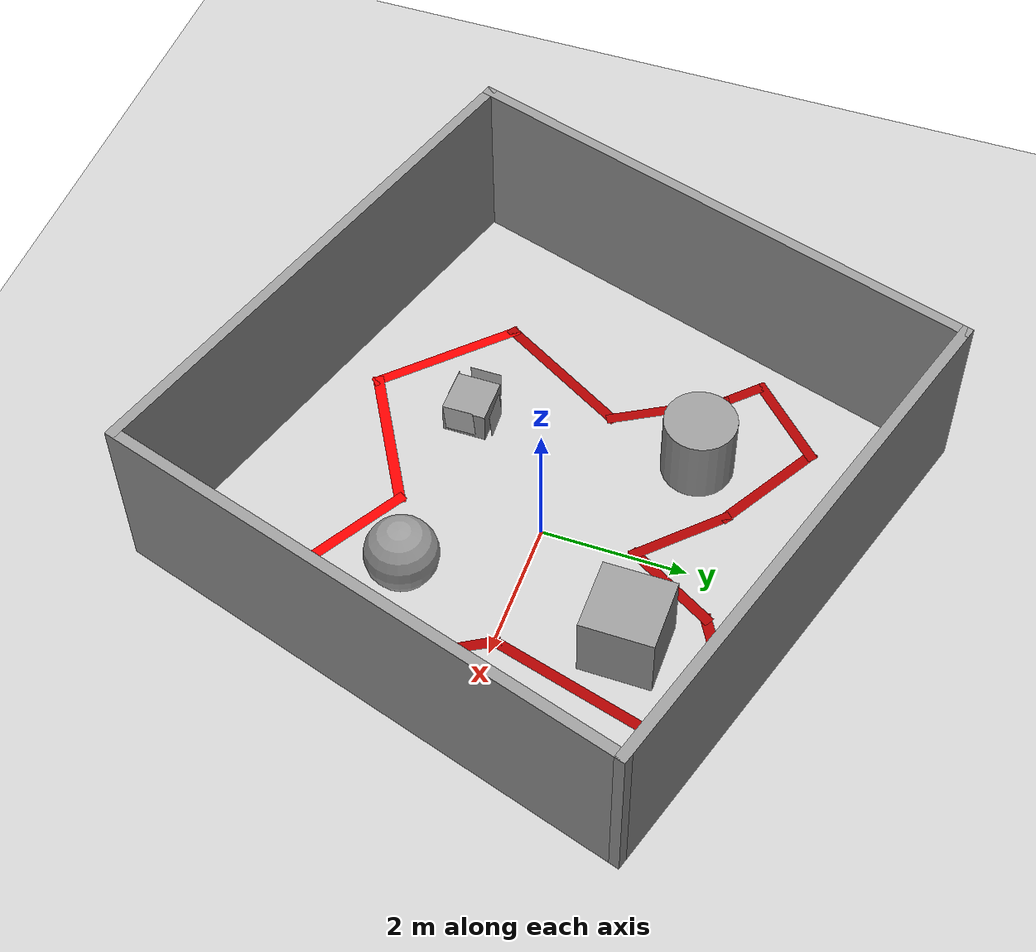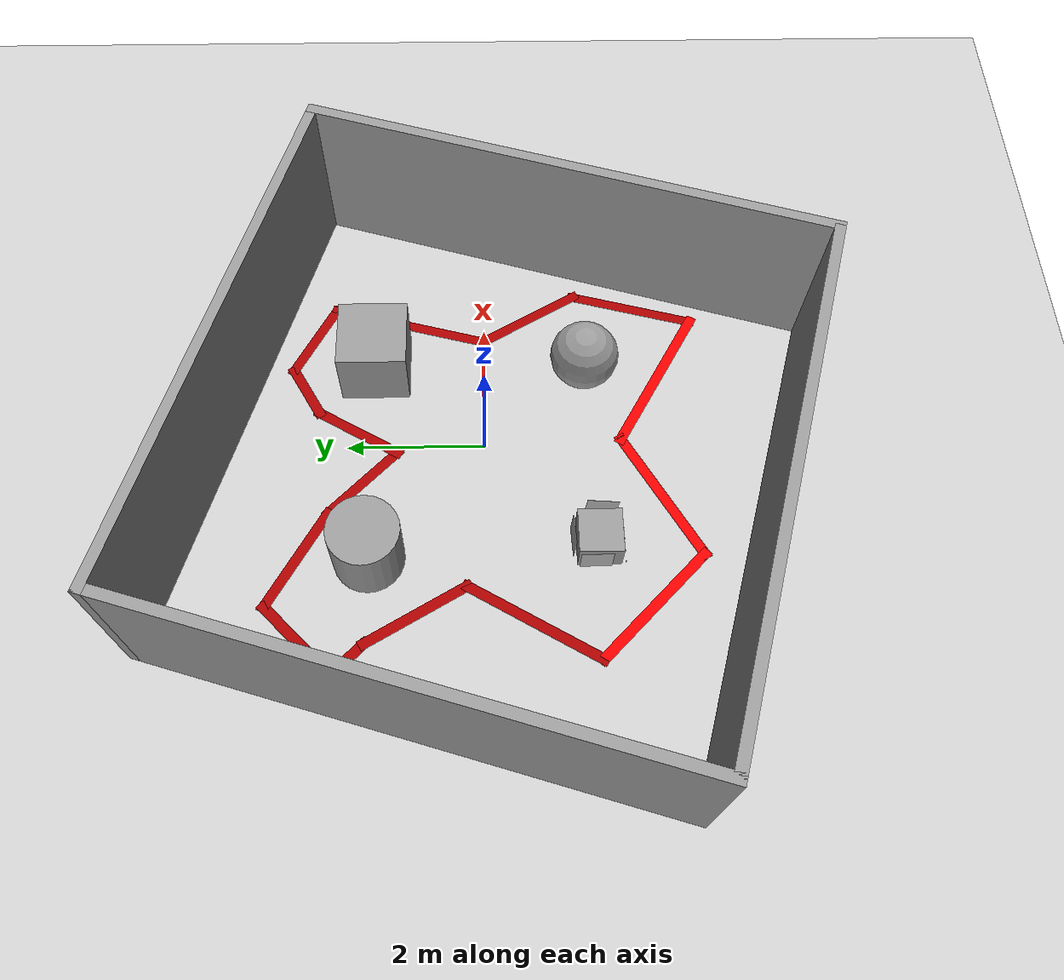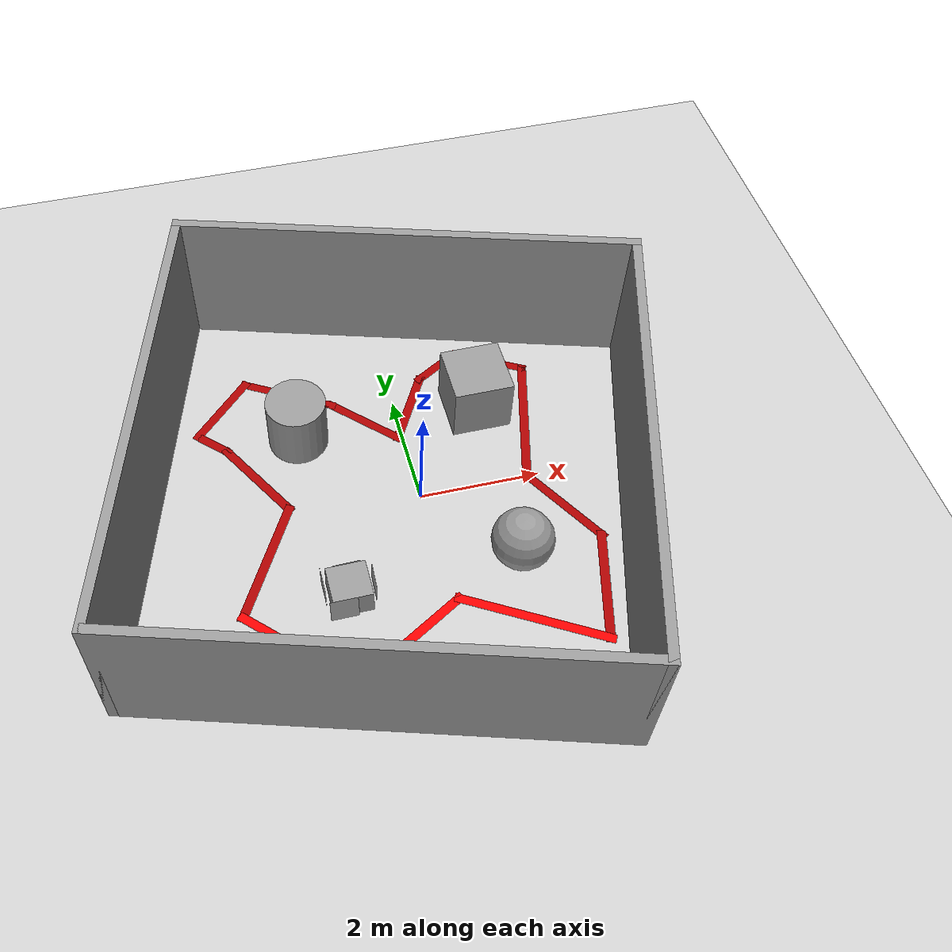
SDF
<sdf version="1.7">
 <world name="default">
  <light name="sun" type="directional">
   <pose>0 0 10 0 -0 0</pose>
   <diffuse>0.8 0.8 0.8 1</diffuse>
   <specular>0.2 0.2 0.2 1</specular>
   <attenuation>
    <range>1000</range>
    <constant>0.9</constant>
    <linear>0.01</linear>
    <quadratic>0.001</quadratic>
   </attenuation>
   <direction>-0.5 0.1 -0.9</direction>
   <spot><inner_angle>0</inner_angle><outer_angle>0</outer_angle><falloff>0</falloff></spot>
  </light>
  <model name="ground_plane">
   <static>1</static>
   <link name="link">
    <collision name="collision">
     <geometry><plane><normal>0 0 1</normal><size>100 100</size></plane></geometry>
     <surface>
      <contact><collide_bitmask>65535</collide_bitmask></contact>
      <friction><ode><mu>100</mu><mu2>50</mu2></ode></friction>
     </surface>
    </collision>
    <visual name="visual">
     <cast_shadows>0</cast_shadows>
     <geometry><plane><normal>0 0 1</normal><size>100 100</size></plane></geometry>
     <material>
      <script><uri>file://media/materials/scripts/gazebo.material</uri><name>Gazebo/Grey</name></script>
     </material>
    </visual>
   </link>
  </model>
  <gravity>0 0 -9.8</gravity>
  <magnetic_field>6e-06 2.3e-05 -4.2e-05</magnetic_field>
  <atmosphere type="adiabatic"/>
  <physics type="ode">
   <max_step_size>0.001</max_step_size>
   <real_time_factor>1</real_time_factor>
   <real_time_update_rate>1000</real_time_update_rate>
  </physics>
  <scene><ambient>0.4 0.4 0.4 1</ambient><background>0.7 0.7 0.7 1</background><shadows>1</shadows></scene>
  <spherical_coordinates>
   <surface_model>EARTH_WGS84</surface_model>
   <latitude_deg>0</latitude_deg>
   <longitude_deg>0</longitude_deg>
   <elevation>0</elevation>
   <heading_deg>0</heading_deg>
  </spherical_coordinates>
  <model name="qrVeTakip">
   <pose>-0.134481 -0.213174 0 0 0 -0.294586</pose>
   <link name="Wall_0">
    <collision name="Wall_0_Collision">
     <geometry><box><size>7.75 0.15 2.5</size></box></geometry>
     <pose>0 0 1.25 0 -0 0</pose>
    </collision>
    <visual name="Wall_0_Visual">
     <pose>0 0 1.25 0 -0 0</pose>
     <geometry><box><size>7.75 0.15 2.5</size></box></geometry>
     <material>
      <script><uri>file://media/materials/scripts/gazebo.material</uri><name>Gazebo/Grey</name></script>
      <ambient>1 1 1 1</ambient>
     </material>
     <meta><layer>0</layer></meta>
    </visual>
    <pose>-4.20166 0 0 0 -0 -1.5708</pose>
   </link>
   <link name="Wall_1">
    <collision name="Wall_1_Collision">
     <geometry><box><size>7.75 0.15 2.5</size></box></geometry>
     <pose>0 0 1.25 0 -0 0</pose>
    </collision>
    <visual name="Wall_1_Visual">
     <pose>0 0 1.25 0 -0 0</pose>
     <geometry><box><size>7.75 0.15 2.5</size></box></geometry>
     <material>
      <script><uri>file://media/materials/scripts/gazebo.material</uri><name>Gazebo/Grey</name></script>
      <ambient>1 1 1 1</ambient>
     </material>
     <meta><layer>0</layer></meta>
    </visual>
    <pose>-0.401663 -3.8 0 0 -0 0</pose>
   </link>
   <link name="Wall_2">
    <collision name="Wall_2_Collision">
     <geometry><box><size>7.75 0.15 2.5</size></box></geometry>
     <pose>0 0 1.25 0 -0 0</pose>
    </collision>
    <visual name="Wall_2_Visual">
     <pose>0 0 1.25 0 -0 0</pose>
     <geometry><box><size>7.75 0.15 2.5</size></box></geometry>
     <material>
      <script><uri>file://media/materials/scripts/gazebo.material</uri><name>Gazebo/Grey</name></script>
      <ambient>1 1 1 1</ambient>
     </material>
     <meta><layer>0</layer></meta>
    </visual>
    <pose>3.39834 0 0 0 -0 1.5708</pose>
   </link>
   <link name="Wall_3">
    <collision name="Wall_3_Collision">
     <geometry><box><size>7.75 0.15 2.5</size></box></geometry>
     <pose>0 0 1.25 0 -0 0</pose>
    </collision>
    <visual name="Wall_3_Visual">
     <pose>0 0 1.25 0 -0 0</pose>
     <geometry><box><size>7.75 0.15 2.5</size></box></geometry>
     <material>
      <script><uri>file://media/materials/scripts/gazebo.material</uri><name>Gazebo/Grey</name></script>
      <ambient>1 1 1 1</ambient>
     </material>
     <meta><layer>0</layer></meta>
    </visual>
    <pose>-0.401663 3.8 0 0 -0 3.14159</pose>
   </link>
   <static>1</static>
  </model>
  <model name="unit_cylinder_0">
   <pose>-1.72359 1.62267 0.499994 -2e-06 -1e-06 0</pose>
   <link name="link">
    <inertial>
     <mass>1</mass>
     <inertia><ixx>0.145833</ixx><ixy>0</ixy><ixz>0</ixz><iyy>0.145833</iyy><iyz>0</iyz><izz>0.125</izz></inertia>
    </inertial>
    <collision name="collision">
     <geometry><cylinder><radius>0.5</radius><length>1</length></cylinder></geometry>
    </collision>
    <visual name="visual">
     <geometry><cylinder><radius>0.5</radius><length>1</length></cylinder></geometry>
     <material>
      <script><name>Gazebo/Grey</name><uri>file://media/materials/scripts/gazebo.material</uri></script>
     </material>
    </visual>
   </link>
  </model>
  <model name="unit_box">
   <pose>-1.52992 -1.56218 0.232921 0 -0 0</pose>
   <link name="link">
    <inertial>
     <mass>1</mass>
     <inertia>
      <ixx>0.166667</ixx>
      <ixy>0</ixy>
      <ixz>0</ixz>
      <iyy>0.166667</iyy>
      <iyz>0</iyz>
      <izz>0.166667</izz>
     </inertia>
    </inertial>
    <collision name="collision">
     <geometry><box><size>0.634732 0.613534 0.465842</size></box></geometry>
    </collision>
    <visual name="visual">
     <geometry><box><size>0.634732 0.613534 0.465842</size></box></geometry>
     <material>
      <script><name>Gazebo/Grey</name><uri>file://media/materials/scripts/gazebo.material</uri></script>
     </material>
    </visual>
   </link>
  </model>
  <model name="unit_box_0">
   <pose>1.35736 1.61518 0.499995 0 -1e-05 0</pose>
   <link name="link">
    <inertial>
     <mass>1</mass>
     <inertia>
      <ixx>0.166667</ixx>
      <ixy>0</ixy>
      <ixz>0</ixz>
      <iyy>0.166667</iyy>
      <iyz>0</iyz>
      <izz>0.166667</izz>
     </inertia>
    </inertial>
    <collision name="collision"><geometry><box><size>1 1 1</size></box></geometry></collision>
    <visual name="visual">
     <geometry><box><size>1 1 1</size></box></geometry>
     <material>
      <script><name>Gazebo/Grey</name><uri>file://media/materials/scripts/gazebo.material</uri></script>
     </material>
    </visual>
   </link>
  </model>
  <model name="unit_sphere">
   <pose>1.25048 -1.4712 0.5 0 -0 0</pose>
   <link name="link">
    <inertial>
     <mass>1</mass>
     <inertia><ixx>0.1</ixx><ixy>0</ixy><ixz>0</ixz><iyy>0.1</iyy><iyz>0</iyz><izz>0.1</izz></inertia>
    </inertial>
    <collision name="collision"><geometry><sphere><radius>0.5</radius></sphere></geometry></collision>
    <visual name="visual">
     <geometry><sphere><radius>0.5</radius></sphere></geometry>
     <material>
      <script><name>Gazebo/Grey</name><uri>file://media/materials/scripts/gazebo.material</uri></script>
     </material>
    </visual>
   </link>
  </model>
  <model name="qrVeTakipMapSon">
   <pose>-0.36344 -0.076075 0 0 -0 0</pose>
   <link name="Wall_36">
    <collision name="Wall_36_Collision"><geometry><box><size>2.5 0.15 0</size></box></geometry></collision>
    <visual name="Wall_36_Visual">
     <geometry><box><size>2.5 0.15 0</size></box></geometry>
     <material>
      <script><uri>file://media/materials/scripts/gazebo.material</uri><name>Gazebo/Grey</name></script>
      <ambient>0.666667 0 0 1</ambient>
     </material>
     <meta><layer>0</layer></meta>
    </visual>
    <pose>2.48844 1.22208 0 0 -0 -1.83249</pose>
   </link>
   <link name="Wall_37">
    <collision name="Wall_37_Collision"><geometry><box><size>1.78561 0.15 0</size></box></geometry></collision>
    <visual name="Wall_37_Visual">
     <geometry><box><size>1.78561 0.15 0</size></box></geometry>
     <material>
      <script><uri>file://media/materials/scripts/gazebo.material</uri><name>Gazebo/Grey</name></script>
      <ambient>0.666667 0 0 1</ambient>
     </material>
     <meta><layer>0</layer></meta>
    </visual>
    <pose>2.59767 -0.61865 0 0 -0 -1.04108</pose>
   </link>
   <link name="Wall_38">
    <collision name="Wall_38_Collision"><geometry><box><size>2.00008 0.15 0</size></box></geometry></collision>
    <visual name="Wall_38_Visual">
     <geometry><box><size>2.00008 0.15 0</size></box></geometry>
     <material>
      <script><uri>file://media/materials/scripts/gazebo.material</uri><name>Gazebo/Grey</name></script>
      <ambient>0.666667 0 0 1</ambient>
     </material>
     <meta><layer>0</layer></meta>
    </visual>
    <pose>2.75816 -2.20465 0 0 -0 -1.83269</pose>
   </link>
   <link name="Wall_39">
    <collision name="Wall_39_Collision"><geometry><box><size>2.53601 0.15 0</size></box></geometry></collision>
    <visual name="Wall_39_Visual">
     <geometry><box><size>2.53601 0.15 0</size></box></geometry>
     <material>
      <script><uri>file://media/materials/scripts/gazebo.material</uri><name>Gazebo/Grey</name></script>
      <ambient>1 0 0 1</ambient>
     </material>
     <meta><layer>0</layer></meta>
    </visual>
    <pose>1.50117 -2.51065 0 0 -0 2.6139</pose>
   </link>
   <link name="Wall_40">
    <collision name="Wall_40_Collision"><geometry><box><size>2.25 0.15 0</size></box></geometry></collision>
    <visual name="Wall_40_Visual">
     <geometry><box><size>2.25 0.15 0</size></box></geometry>
     <material>
      <script><uri>file://media/materials/scripts/gazebo.material</uri><name>Gazebo/Grey</name></script>
      <ambient>1 0 0 1</ambient>
     </material>
     <meta><layer>0</layer></meta>
    </visual>
    <pose>-0.43906 -2.43492 0 0 -0 -2.61808</pose>
   </link>
   <link name="Wall_41">
    <collision name="Wall_41_Collision"><geometry><box><size>2.25 0.15 0</size></box></geometry></collision>
    <visual name="Wall_41_Visual">
     <geometry><box><size>2.25 0.15 0</size></box></geometry>
     <material>
      <script><uri>file://media/materials/scripts/gazebo.material</uri><name>Gazebo/Grey</name></script>
      <ambient>1 0 0 1</ambient>
     </material>
     <meta><layer>0</layer></meta>
    </visual>
    <pose>-2.09056 -2.21742 0 0 -0 2.35586</pose>
   </link>
   <link name="Wall_42">
    <collision name="Wall_42_Collision"><geometry><box><size>2.25 0.15 0</size></box></geometry></collision>
    <visual name="Wall_42_Visual">
     <geometry><box><size>2.25 0.15 0</size></box></geometry>
     <material>
      <script><uri>file://media/materials/scripts/gazebo.material</uri><name>Gazebo/Grey</name></script>
      <ambient>0.666667 0 0 1</ambient>
     </material>
     <meta><layer>0</layer></meta>
    </visual>
    <pose>-2.30756 -0.565925 0 0 -0 1.04704</pose>
   </link>
   <link name="Wall_43">
    <collision name="Wall_43_Collision"><geometry><box><size>1.75 0.15 0</size></box></geometry></collision>
    <visual name="Wall_43_Visual">
     <geometry><box><size>1.75 0.15 0</size></box></geometry>
     <material>
      <script><uri>file://media/materials/scripts/gazebo.material</uri><name>Gazebo/Grey</name></script>
      <ambient>0.666667 0 0 1</ambient>
     </material>
     <meta><layer>0</layer></meta>
    </visual>
    <pose>-2.18256 1.03608 0 0 -0 2.09428</pose>
   </link>
   <link name="Wall_44">
    <collision name="Wall_44_Collision"><geometry><box><size>0.75 0.15 0</size></box></geometry></collision>
    <visual name="Wall_44_Visual">
     <geometry><box><size>0.75 0.15 0</size></box></geometry>
     <material>
      <script><uri>file://media/materials/scripts/gazebo.material</uri><name>Gazebo/Grey</name></script>
      <ambient>0.666667 0 0 1</ambient>
     </material>
     <meta><layer>0</layer></meta>
    </visual>
    <pose>-2.79506 1.94108 0 0 -0 2.35737</pose>
   </link>
   <link name="Wall_45">
    <collision name="Wall_45_Collision"><geometry><box><size>1.5 0.15 0</size></box></geometry></collision>
    <visual name="Wall_45_Visual">
     <geometry><box><size>1.5 0.15 0</size></box></geometry>
     <material>
      <script><uri>file://media/materials/scripts/gazebo.material</uri><name>Gazebo/Grey</name></script>
      <ambient>0.666667 0 0 1</ambient>
     </material>
     <meta><layer>0</layer></meta>
    </visual>
    <pose>-2.53006 2.63057 0 0 -0 0.785398</pose>
   </link>
   <link name="Wall_46">
    <collision name="Wall_46_Collision"><geometry><box><size>1.75 0.15 0</size></box></geometry></collision>
    <visual name="Wall_46_Visual">
     <geometry><box><size>1.75 0.15 0</size></box></geometry>
     <material>
      <script><uri>file://media/materials/scripts/gazebo.material</uri><name>Gazebo/Grey</name></script>
      <ambient>0.666667 0 0 1</ambient>
     </material>
     <meta><layer>0</layer></meta>
    </visual>
    <pose>-1.35956 2.70808 0 0 -0 -0.523487</pose>
   </link>
   <link name="Wall_47">
    <collision name="Wall_47_Collision"><geometry><box><size>1.5 0.15 0</size></box></geometry></collision>
    <visual name="Wall_47_Visual">
     <geometry><box><size>1.5 0.15 0</size></box></geometry>
     <material>
      <script><uri>file://media/materials/scripts/gazebo.material</uri><name>Gazebo/Grey</name></script>
      <ambient>0.666667 0 0 1</ambient>
     </material>
     <meta><layer>0</layer></meta>
    </visual>
    <pose>-0.18956 1.83058 0 0 -0 -0.785922</pose>
   </link>
   <link name="Wall_48">
    <collision name="Wall_48_Collision"><geometry><box><size>1.5 0.15 0</size></box></geometry></collision>
    <visual name="Wall_48_Visual">
     <geometry><box><size>1.5 0.15 0</size></box></geometry>
     <material>
      <script><uri>file://media/materials/scripts/gazebo.material</uri><name>Gazebo/Grey</name></script>
      <ambient>0.666667 0 0 1</ambient>
     </material>
     <meta><layer>0</layer></meta>
    </visual>
    <pose>0.62494 1.93758 0 0 -0 1.04715</pose>
   </link>
   <link name="Wall_49">
    <collision name="Wall_49_Collision"><geometry><box><size>1 0.15 0</size></box></geometry></collision>
    <visual name="Wall_49_Visual">
     <geometry><box><size>1 0.15 0</size></box></geometry>
     <material>
      <script><uri>file://media/materials/scripts/gazebo.material</uri><name>Gazebo/Grey</name></script>
      <ambient>0.666667 0 0 1</ambient>
     </material>
     <meta><layer>0</layer></meta>
    </visual>
    <pose>1.33044 2.73457 0 0 -0 0.52367</pose>
   </link>
   <link name="Wall_50">
    <collision name="Wall_50_Collision"><geometry><box><size>1.39308 0.15 0</size></box></geometry></collision>
    <visual name="Wall_50_Visual">
     <geometry><box><size>1.39308 0.15 0</size></box></geometry>
     <material>
      <script><uri>file://media/materials/scripts/gazebo.material</uri><name>Gazebo/Grey</name></script>
      <ambient>0.666667 0 0 1</ambient>
     </material>
     <meta><layer>0</layer></meta>
    </visual>
    <pose>2.24544 2.65207 0 0 -0 -0.494595</pose>
   </link>
   <static>1</static>
  </model>
  <model name="qr_HikRaclabQr">
   <static>1</static>
   <link name="qr_HikRaclabQr_link">
    <pose>0 0 0.001 0 -0 1.5708</pose>
    <visual name="visual_qr_HikRaclabQr">
     <cast_shadows>0</cast_shadows>
     <geometry><box><size>0.44 0.44 0.001</size></box></geometry>
     <material>
      <script>
       <uri>model://qr_HikRaclabQr/materials/scripts</uri>
       <uri>model://qr_HikRaclabQr/materials/textures</uri>
       <name>qr_HikRaclabQr/qr_HikRaclabQr</name>
      </script>
     </material>
    </visual>
   </link>
   <pose>-1.50325 -1.2074 0.20879 -0.750251 -1.4944 -0.774959</pose>
  </model>
  <model name="qr_HikRaclabQr_0">
   <static>1</static>
   <link name="qr_HikRaclabQr_link">
    <pose>0 0 0.001 0 -0 1.5708</pose>
    <visual name="visual_qr_HikRaclabQr">
     <cast_shadows>0</cast_shadows>
     <geometry><box><size>0.44 0.44 0.001</size></box></geometry>
     <material>
      <script>
       <uri>model://qr_HikRaclabQr/materials/scripts</uri>
       <uri>model://qr_HikRaclabQr/materials/textures</uri>
       <name>qr_HikRaclabQr/qr_HikRaclabQr</name>
      </script>
     </material>
    </visual>
   </link>
   <pose>-1.14992 -1.60056 0.346391 -1.57329 0.071092 -1.60584</pose>
  </model>
  <model name="qr_HikRaclabQr_1">
   <static>1</static>
   <link name="qr_HikRaclabQr_link">
    <pose>0 0 0.001 0 -0 1.5708</pose>
    <visual name="visual_qr_HikRaclabQr">
     <cast_shadows>0</cast_shadows>
     <geometry><box><size>0.44 0.44 0.001</size></box></geometry>
     <material>
      <script>
       <uri>model://qr_HikRaclabQr/materials/scripts</uri>
       <uri>model://qr_HikRaclabQr/materials/textures</uri>
       <name>qr_HikRaclabQr/qr_HikRaclabQr</name>
      </script>
     </material>
    </visual>
   </link>
   <pose>-1.92326 -1.49588 0.34369 3.14159 -1.55455 3.14159</pose>
  </model>
  <model name="qr_HikRaclabQr_2">
   <static>1</static>
   <link name="qr_HikRaclabQr_link">
    <pose>0 0 0.001 0 -0 1.5708</pose>
    <visual name="visual_qr_HikRaclabQr">
     <cast_shadows>0</cast_shadows>
     <geometry><box><size>0.44 0.44 0.001</size></box></geometry>
     <material>
      <script>
       <uri>model://qr_HikRaclabQr/materials/scripts</uri>
       <uri>model://qr_HikRaclabQr/materials/textures</uri>
       <name>qr_HikRaclabQr/qr_HikRaclabQr</name>
      </script>
     </material>
    </visual>
   </link>
   <pose>-1.67667 -1.90084 0.252563 -1.70609 0 0</pose>
  </model>
 </world>
</sdf>
